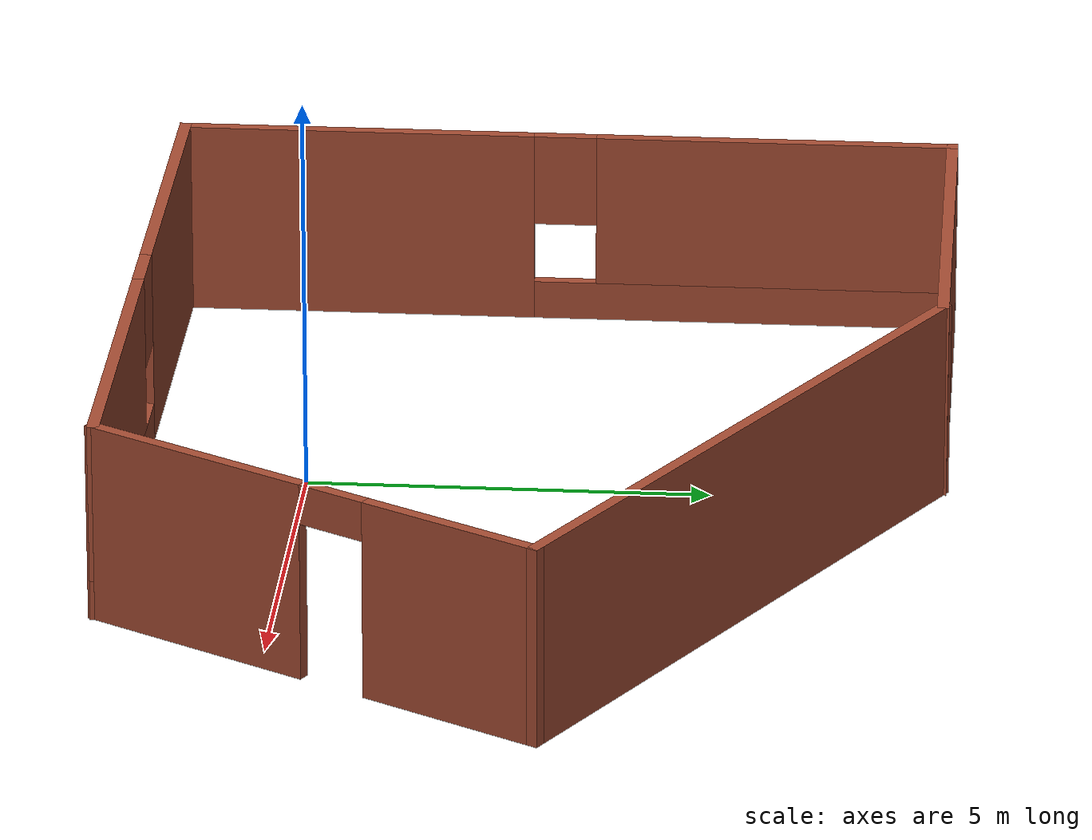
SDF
<?xml version='1.0'?>
<sdf version='1.7'>
  <model name='base_building'>
    <pose>0.875711 2.86213 0 0 -0 0</pose>
    <link name='Wall_0'>
      <pose>-1.60071 -4.96213 0 0 -0 0</pose>
      <visual name='Wall_0_Visual_0'>
        <pose>-2.73978 0 1.25 0 -0 0</pose>
        <geometry>
          <box>
            <size>4.52044 0.15 2.5</size>
          </box>
        </geometry>
        <material>
          <script>
            <uri>file://media/materials/scripts/gazebo.material</uri>
            <name>Gazebo/Bricks</name>
          </script>
          <ambient>1 1 1 1</ambient>
        </material>
        <meta>
          <layer>0</layer>
        </meta>
      </visual>
      <collision name='Wall_0_Collision_0'>
        <geometry>
          <box>
            <size>4.52044 0.15 2.5</size>
          </box>
        </geometry>
        <pose>-2.73978 0 1.25 0 -0 0</pose>
      </collision>
      <visual name='Wall_0_Visual_1'>
        <pose>2.26022 0 0.25 0 -0 0</pose>
        <geometry>
          <box>
            <size>5.47956 0.15 0.5</size>
          </box>
        </geometry>
        <material>
          <script>
            <uri>file://media/materials/scripts/gazebo.material</uri>
            <name>Gazebo/Bricks</name>
          </script>
          <ambient>1 1 1 1</ambient>
        </material>
        <meta>
          <layer>0</layer>
        </meta>
      </visual>
      <collision name='Wall_0_Collision_1'>
        <geometry>
          <box>
            <size>5.47956 0.15 0.5</size>
          </box>
        </geometry>
        <pose>2.26022 0 0.25 0 -0 0</pose>
      </collision>
      <visual name='Wall_0_Visual_2'>
        <pose>2.66022 0 1.5 0 -0 0</pose>
        <geometry>
          <box>
            <size>4.67956 0.15 2</size>
          </box>
        </geometry>
        <material>
          <script>
            <uri>file://media/materials/scripts/gazebo.material</uri>
            <name>Gazebo/Bricks</name>
          </script>
          <ambient>1 1 1 1</ambient>
        </material>
        <meta>
          <layer>0</layer>
        </meta>
      </visual>
      <collision name='Wall_0_Collision_2'>
        <geometry>
          <box>
            <size>4.67956 0.15 2</size>
          </box>
        </geometry>
        <pose>2.66022 0 1.5 0 -0 0</pose>
      </collision>
      <visual name='Wall_0_Visual_3'>
        <pose>-0.07956 0 1.9 0 -0 0</pose>
        <geometry>
          <box>
            <size>0.8 0.15 1.2</size>
          </box>
        </geometry>
        <material>
          <script>
            <uri>file://media/materials/scripts/gazebo.material</uri>
            <name>Gazebo/Bricks</name>
          </script>
          <ambient>1 1 1 1</ambient>
        </material>
        <meta>
          <layer>0</layer>
        </meta>
      </visual>
      <collision name='Wall_0_Collision_3'>
        <geometry>
          <box>
            <size>0.8 0.15 1.2</size>
          </box>
        </geometry>
        <pose>-0.07956 0 1.9 0 -0 0</pose>
      </collision>
    </link>
    <link name='Wall_4'>
      <pose>-6.52571 -0.037131 0 0 -0 1.5708</pose>
      <visual name='Wall_4_Visual_0'>
        <pose>-2.71385 0 1.25 0 -0 0</pose>
        <geometry>
          <box>
            <size>4.57231 0.15 2.5</size>
          </box>
        </geometry>
        <material>
          <script>
            <uri>file://media/materials/scripts/gazebo.material</uri>
            <name>Gazebo/Bricks</name>
          </script>
          <ambient>1 1 1 1</ambient>
        </material>
        <meta>
          <layer>0</layer>
        </meta>
      </visual>
      <collision name='Wall_4_Collision_0'>
        <geometry>
          <box>
            <size>4.57231 0.15 2.5</size>
          </box>
        </geometry>
        <pose>-2.71385 0 1.25 0 -0 0</pose>
      </collision>
      <visual name='Wall_4_Visual_1'>
        <pose>2.28615 0 0.25 0 -0 0</pose>
        <geometry>
          <box>
            <size>5.42769 0.15 0.5</size>
          </box>
        </geometry>
        <material>
          <script>
            <uri>file://media/materials/scripts/gazebo.material</uri>
            <name>Gazebo/Bricks</name>
          </script>
          <ambient>1 1 1 1</ambient>
        </material>
        <meta>
          <layer>0</layer>
        </meta>
      </visual>
      <collision name='Wall_4_Collision_1'>
        <geometry>
          <box>
            <size>5.42769 0.15 0.5</size>
          </box>
        </geometry>
        <pose>2.28615 0 0.25 0 -0 0</pose>
      </collision>
      <visual name='Wall_4_Visual_2'>
        <pose>2.68615 0 1.5 0 -0 0</pose>
        <geometry>
          <box>
            <size>4.62769 0.15 2</size>
          </box>
        </geometry>
        <material>
          <script>
            <uri>file://media/materials/scripts/gazebo.material</uri>
            <name>Gazebo/Bricks</name>
          </script>
          <ambient>1 1 1 1</ambient>
        </material>
        <meta>
          <layer>0</layer>
        </meta>
      </visual>
      <collision name='Wall_4_Collision_2'>
        <geometry>
          <box>
            <size>4.62769 0.15 2</size>
          </box>
        </geometry>
        <pose>2.68615 0 1.5 0 -0 0</pose>
      </collision>
      <visual name='Wall_4_Visual_3'>
        <pose>-0.027691 0 1.9 0 -0 0</pose>
        <geometry>
          <box>
            <size>0.8 0.15 1.2</size>
          </box>
        </geometry>
        <material>
          <script>
            <uri>file://media/materials/scripts/gazebo.material</uri>
            <name>Gazebo/Bricks</name>
          </script>
          <ambient>1 1 1 1</ambient>
        </material>
        <meta>
          <layer>0</layer>
        </meta>
      </visual>
      <collision name='Wall_4_Collision_3'>
        <geometry>
          <box>
            <size>0.8 0.15 1.2</size>
          </box>
        </geometry>
        <pose>-0.027691 0 1.9 0 -0 0</pose>
      </collision>
    </link>
    <link name='Wall_6'>
      <pose>4.91179 -2.2125 0 0 -0 1.0472</pose>
      <visual name='Wall_6_Visual_0'>
        <pose>-1.68658 0 1.25 0 -0 0</pose>
        <geometry>
          <box>
            <size>3.12684 0.15 2.5</size>
          </box>
        </geometry>
        <material>
          <script>
            <uri>file://media/materials/scripts/gazebo.material</uri>
            <name>Gazebo/Bricks</name>
          </script>
          <ambient>1 1 1 1</ambient>
        </material>
        <meta>
          <layer>0</layer>
        </meta>
      </visual>
      <collision name='Wall_6_Collision_0'>
        <geometry>
          <box>
            <size>3.12684 0.15 2.5</size>
          </box>
        </geometry>
        <pose>-1.68658 0 1.25 0 -0 0</pose>
      </collision>
      <visual name='Wall_6_Visual_1'>
        <pose>2.01342 0 1.25 0 -0 0</pose>
        <geometry>
          <box>
            <size>2.47316 0.15 2.5</size>
          </box>
        </geometry>
        <material>
          <script>
            <uri>file://media/materials/scripts/gazebo.material</uri>
            <name>Gazebo/Bricks</name>
          </script>
          <ambient>1 1 1 1</ambient>
        </material>
        <meta>
          <layer>0</layer>
        </meta>
      </visual>
      <collision name='Wall_6_Collision_1'>
        <geometry>
          <box>
            <size>2.47316 0.15 2.5</size>
          </box>
        </geometry>
        <pose>2.01342 0 1.25 0 -0 0</pose>
      </collision>
      <visual name='Wall_6_Visual_2'>
        <pose>0.326836 0 2.25 0 -0 0</pose>
        <geometry>
          <box>
            <size>0.9 0.15 0.5</size>
          </box>
        </geometry>
        <material>
          <script>
            <uri>file://media/materials/scripts/gazebo.material</uri>
            <name>Gazebo/Bricks</name>
          </script>
          <ambient>1 1 1 1</ambient>
        </material>
        <meta>
          <layer>0</layer>
        </meta>
      </visual>
      <collision name='Wall_6_Collision_2'>
        <geometry>
          <box>
            <size>0.9 0.15 0.5</size>
          </box>
        </geometry>
        <pose>0.326836 0 2.25 0 -0 0</pose>
      </collision>
    </link>
    <link name='Wall_8'>
      <collision name='Wall_8_Collision'>
        <geometry>
          <box>
            <size>9 0.15 2.5</size>
          </box>
        </geometry>
        <pose>0 0 1.25 0 -0 0</pose>
      </collision>
      <visual name='Wall_8_Visual'>
        <pose>0 0 1.25 0 -0 0</pose>
        <geometry>
          <box>
            <size>9 0.15 2.5</size>
          </box>
        </geometry>
        <material>
          <script>
            <uri>file://media/materials/scripts/gazebo.material</uri>
            <name>Gazebo/Bricks</name>
          </script>
          <ambient>1 1 1 1</ambient>
        </material>
        <meta>
          <layer>0</layer>
        </meta>
      </visual>
      <pose>2.66713 2.74963 0 0 -0 2.61799</pose>
    </link>
    <link name='Wall_9'>
      <collision name='Wall_9_Collision'>
        <geometry>
          <box>
            <size>5.51119 0.15 2.5</size>
          </box>
        </geometry>
        <pose>0 0 1.25 0 -0 0</pose>
      </collision>
      <visual name='Wall_9_Visual'>
        <pose>0 0 1.25 0 -0 0</pose>
        <geometry>
          <box>
            <size>5.51119 0.15 2.5</size>
          </box>
        </geometry>
        <material>
          <script>
            <uri>file://media/materials/scripts/gazebo.material</uri>
            <name>Gazebo/Bricks</name>
          </script>
          <ambient>1 1 1 1</ambient>
        </material>
        <meta>
          <layer>0</layer>
        </meta>
      </visual>
      <pose>-3.84537 4.925 0 0 -0 -3.12774</pose>
    </link>
    <static>1</static>
  </model>
</sdf>
